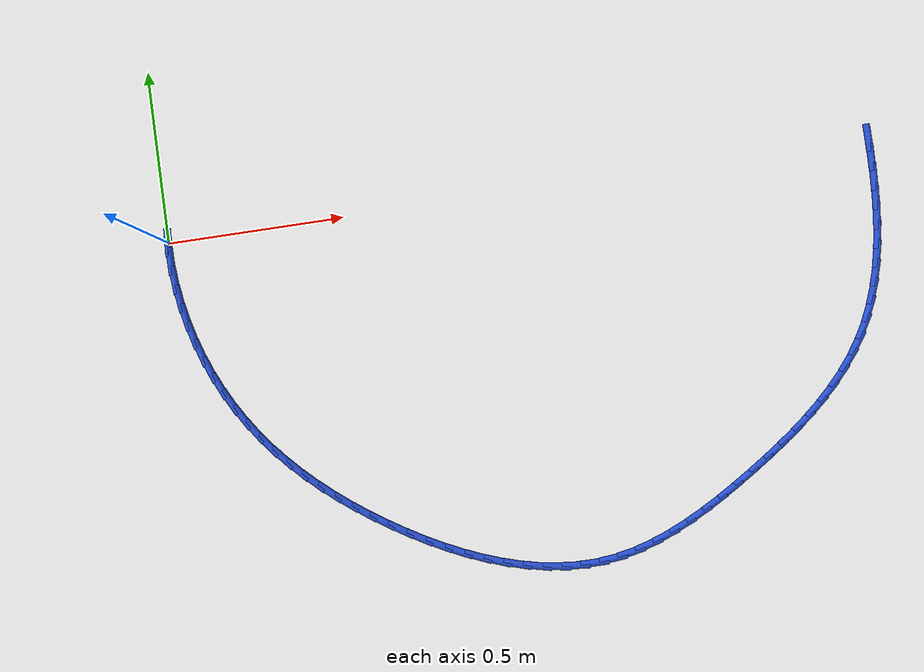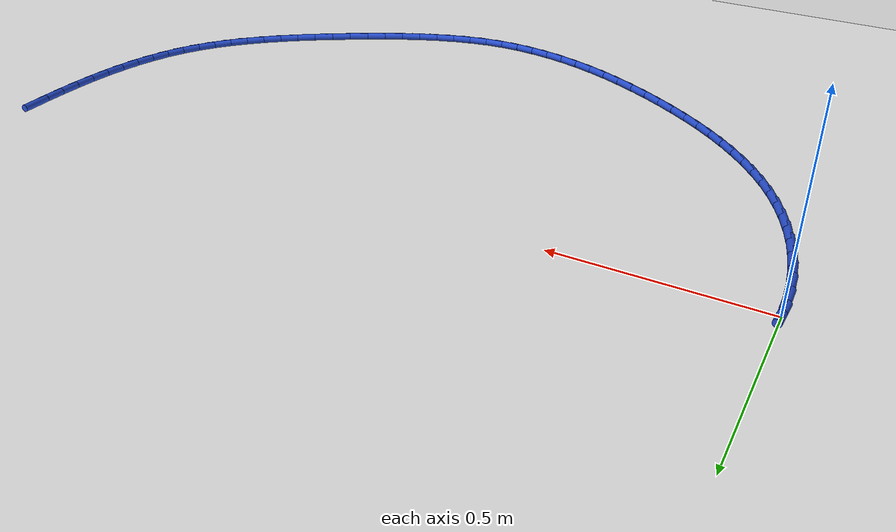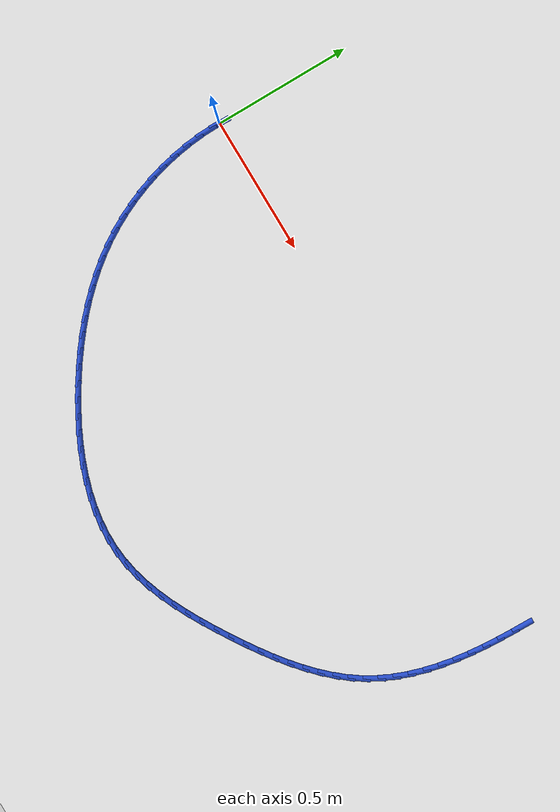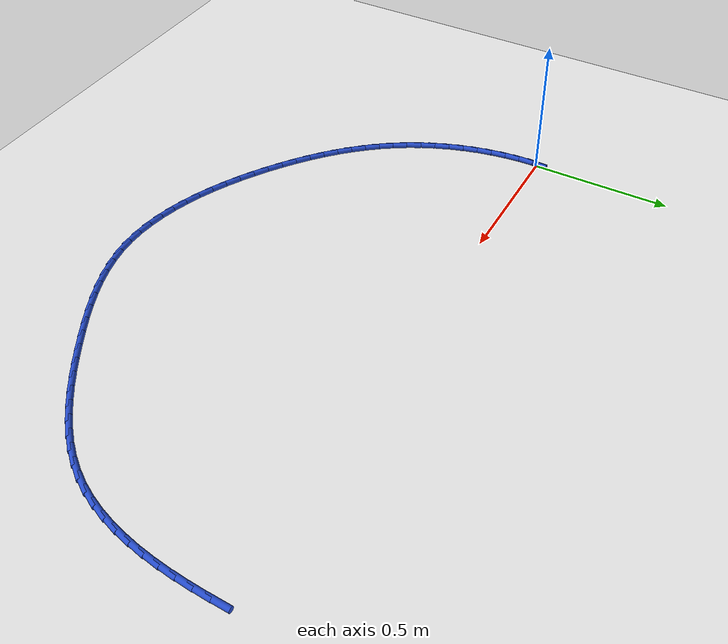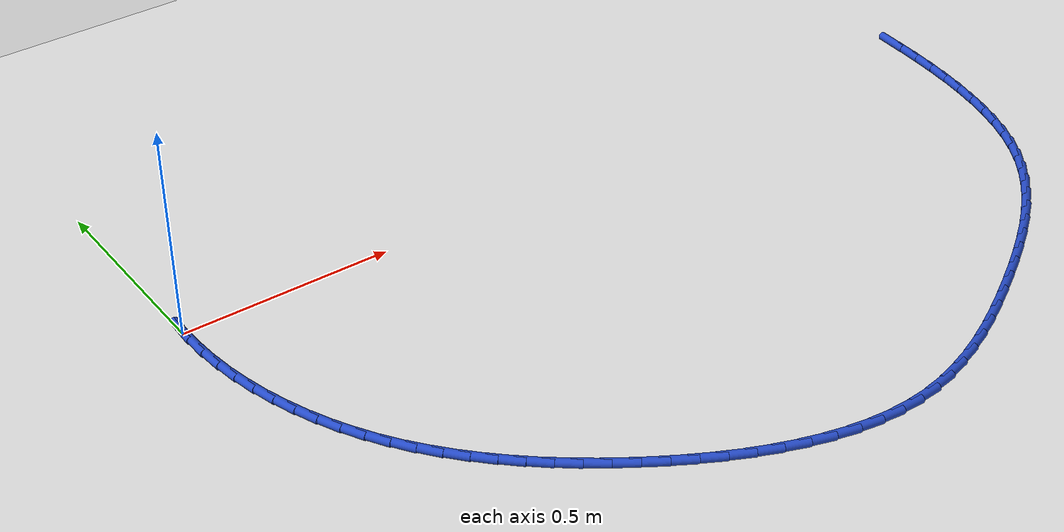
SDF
<sdf version="1.6">
 <world name="default">
  <model name="ground_plane">
   <static>1</static>
   <link name="link">
    <collision name="collision">
     <geometry><plane><normal>0 0 1</normal><size>100 100</size></plane></geometry>
     <surface><friction><ode><mu>100</mu><mu2>50</mu2></ode></friction></surface>
    </collision>
    <visual name="visual">
     <cast_shadows>0</cast_shadows>
     <geometry><plane><normal>0 0 1</normal><size>100 100</size></plane></geometry>
     <material>
      <script><uri>file://media/materials/scripts/gazebo.material</uri><name>Gazebo/WhiteGlow</name></script>
     </material>
    </visual>
   </link>
  </model>
  <model name="line">
   <link name="link_0">
    <pose>-7.28583859910259e-17 -1.3877787807814457e-17 0.01 0 1.57 1.5291417372025922</pose>
    <collision name="collision">
     <geometry><cylinder><radius>0.01</radius><length>0.08</length></cylinder></geometry>
    </collision>
    <visual name="visual">
     <material>
      <script><name>Gazebo/Blue</name><uri>file://media/materials/scripts/gazebo.material</uri></script>
     </material>
     <geometry><cylinder><radius>0.01</radius><length>0.08</length></cylinder></geometry>
    </visual>
   </link>
   <link name="link_61">
    <pose>2.0157058427569576 0.0009565694177509104 0.01 0 1.57 1.5425858403529267</pose>
    <collision name="collision">
     <geometry><cylinder><radius>0.01</radius><length>0.08</length></cylinder></geometry>
    </collision>
    <visual name="visual">
     <material>
      <script><name>Gazebo/Blue</name><uri>file://media/materials/scripts/gazebo.material</uri></script>
     </material>
     <geometry><cylinder><radius>0.01</radius><length>0.08</length></cylinder></geometry>
    </visual>
   </link>
   <link name="link_62">
    <pose>2.0140944439694186 -0.0561488371424163 0.01 0 1.57 1.518823648468559</pose>
    <collision name="collision">
     <geometry><cylinder><radius>0.01</radius><length>0.08</length></cylinder></geometry>
    </collision>
    <visual name="visual">
     <material>
      <script><name>Gazebo/Blue</name><uri>file://media/materials/scripts/gazebo.material</uri></script>
     </material>
     <geometry><cylinder><radius>0.01</radius><length>0.08</length></cylinder></geometry>
    </visual>
   </link>
   <link name="link_63">
    <pose>2.011146064812797 -0.11282715530353107 0.01 0 1.57 1.489719762614309</pose>
    <collision name="collision">
     <geometry><cylinder><radius>0.01</radius><length>0.08</length></cylinder></geometry>
    </collision>
    <visual name="visual">
     <material>
      <script><name>Gazebo/Blue</name><uri>file://media/materials/scripts/gazebo.material</uri></script>
     </material>
     <geometry><cylinder><radius>0.01</radius><length>0.08</length></cylinder></geometry>
    </visual>
   </link>
   <link name="link_64">
    <pose>2.00659082684045 -0.16888839191007618 0.01 0 1.57 1.4549108157230555</pose>
    <collision name="collision">
     <geometry><cylinder><radius>0.01</radius><length>0.08</length></cylinder></geometry>
    </collision>
    <visual name="visual">
     <material>
      <script><name>Gazebo/Blue</name><uri>file://media/materials/scripts/gazebo.material</uri></script>
     </material>
     <geometry><cylinder><radius>0.01</radius><length>0.08</length></cylinder></geometry>
    </visual>
   </link>
   <link name="link_65">
    <pose>2.0001588516057334 -0.22414255380653675 0.01 0 1.57 1.4139843972703303</pose>
    <collision name="collision">
     <geometry><cylinder><radius>0.01</radius><length>0.08</length></cylinder></geometry>
    </collision>
    <visual name="visual">
     <material>
      <script><name>Gazebo/Blue</name><uri>file://media/materials/scripts/gazebo.material</uri></script>
     </material>
     <geometry><cylinder><radius>0.01</radius><length>0.08</length></cylinder></geometry>
    </visual>
   </link>
   <link name="link_66">
    <pose>1.9915802606620037 -0.2783996478373977 0.01 0 1.57 1.3665059052004667</pose>
    <collision name="collision">
     <geometry><cylinder><radius>0.01</radius><length>0.08</length></cylinder></geometry>
    </collision>
    <visual name="visual">
     <material>
      <script><name>Gazebo/Blue</name><uri>file://media/materials/scripts/gazebo.material</uri></script>
     </material>
     <geometry><cylinder><radius>0.01</radius><length>0.08</length></cylinder></geometry>
    </visual>
   </link>
   <link name="link_67">
    <pose>1.980585175562617 -0.33146968084714185 0.01 0 1.57 1.3120611916456293</pose>
    <collision name="collision">
     <geometry><cylinder><radius>0.01</radius><length>0.08</length></cylinder></geometry>
    </collision>
    <visual name="visual">
     <material>
      <script><name>Gazebo/Blue</name><uri>file://media/materials/scripts/gazebo.material</uri></script>
     </material>
     <geometry><cylinder><radius>0.01</radius><length>0.08</length></cylinder></geometry>
    </visual>
   </link>
   <link name="link_68">
    <pose>1.9669037178609305 -0.3831626596802545 0.01 0 1.57 1.2503199363516948</pose>
    <collision name="collision">
     <geometry><cylinder><radius>0.01</radius><length>0.08</length></cylinder></geometry>
    </collision>
    <visual name="visual">
     <material>
      <script><name>Gazebo/Blue</name><uri>file://media/materials/scripts/gazebo.material</uri></script>
     </material>
     <geometry><cylinder><radius>0.01</radius><length>0.08</length></cylinder></geometry>
    </visual>
   </link>
   <link name="link_69">
    <pose>1.9502660091103001 -0.43328859118121976 0.01 0 1.57 1.1811223631322614</pose>
    <collision name="collision">
     <geometry><cylinder><radius>0.01</radius><length>0.08</length></cylinder></geometry>
    </collision>
    <visual name="visual">
     <material>
      <script><name>Gazebo/Blue</name><uri>file://media/materials/scripts/gazebo.material</uri></script>
     </material>
     <geometry><cylinder><radius>0.01</radius><length>0.08</length></cylinder></geometry>
    </visual>
   </link>
   <link name="link_70">
    <pose>1.9304021708640815 -0.4816574821945224 0.01 0 1.57 1.1045856779679706</pose>
    <collision name="collision">
     <geometry><cylinder><radius>0.01</radius><length>0.08</length></cylinder></geometry>
    </collision>
    <visual name="visual">
     <material>
      <script><name>Gazebo/Blue</name><uri>file://media/materials/scripts/gazebo.material</uri></script>
     </material>
     <geometry><cylinder><radius>0.01</radius><length>0.08</length></cylinder></geometry>
    </visual>
   </link>
   <link name="link_71">
    <pose>1.9070423246756327 -0.5280793395646459 0.01 0 1.57 1.0213057545187225</pose>
    <collision name="collision">
     <geometry><cylinder><radius>0.01</radius><length>0.08</length></cylinder></geometry>
    </collision>
    <visual name="visual">
     <material>
      <script><name>Gazebo/Blue</name><uri>file://media/materials/scripts/gazebo.material</uri></script>
     </material>
     <geometry><cylinder><radius>0.01</radius><length>0.08</length></cylinder></geometry>
    </visual>
   </link>
   <link name="link_72">
    <pose>1.8799207354164829 -0.5723663896274764 0.01 0 1.57 0.9374509358287565</pose>
    <collision name="collision">
     <geometry><cylinder><radius>0.01</radius><length>0.08</length></cylinder></geometry>
    </collision>
    <visual name="visual">
     <material>
      <script><name>Gazebo/Blue</name><uri>file://media/materials/scripts/gazebo.material</uri></script>
     </material>
     <geometry><cylinder><radius>0.01</radius><length>0.08</length></cylinder></geometry>
    </visual>
   </link>
   <link name="link_73">
    <pose>1.8490132555443612 -0.6144602722825662 0.01 0 1.57 0.8617910320957431</pose>
    <collision name="collision">
     <geometry><cylinder><radius>0.01</radius><length>0.08</length></cylinder></geometry>
    </collision>
    <visual name="visual">
     <material>
      <script><name>Gazebo/Blue</name><uri>file://media/materials/scripts/gazebo.material</uri></script>
     </material>
     <geometry><cylinder><radius>0.01</radius><length>0.08</length></cylinder></geometry>
    </visual>
   </link>
   <link name="link_74">
    <pose>1.8146662213558487 -0.6545010880980016 0.01 0 1.57 0.7951370696807222</pose>
    <collision name="collision">
     <geometry><cylinder><radius>0.01</radius><length>0.08</length></cylinder></geometry>
    </collision>
    <visual name="visual">
     <material>
      <script><name>Gazebo/Blue</name><uri>file://media/materials/scripts/gazebo.material</uri></script>
     </material>
     <geometry><cylinder><radius>0.01</radius><length>0.08</length></cylinder></geometry>
    </visual>
   </link>
   <link name="link_75">
    <pose>1.7772573784040935 -0.6926457629427386 0.01 0 1.57 0.7372325013766583</pose>
    <collision name="collision">
     <geometry><cylinder><radius>0.01</radius><length>0.08</length></cylinder></geometry>
    </collision>
    <visual name="visual">
     <material>
      <script><name>Gazebo/Blue</name><uri>file://media/materials/scripts/gazebo.material</uri></script>
     </material>
     <geometry><cylinder><radius>0.01</radius><length>0.08</length></cylinder></geometry>
    </visual>
   </link>
   <link name="link_76">
    <pose>1.737164472242243 -0.7290512226857342 0.01 0 1.57 0.6876041704818511</pose>
    <collision name="collision">
     <geometry><cylinder><radius>0.01</radius><length>0.08</length></cylinder></geometry>
    </collision>
    <visual name="visual">
     <material>
      <script><name>Gazebo/Blue</name><uri>file://media/materials/scripts/gazebo.material</uri></script>
     </material>
     <geometry><cylinder><radius>0.01</radius><length>0.08</length></cylinder></geometry>
    </visual>
   </link>
   <link name="link_77">
    <pose>1.6947652484234457 -0.7638743931959453 0.01 0 1.57 0.6456914863020456</pose>
    <collision name="collision">
     <geometry><cylinder><radius>0.01</radius><length>0.08</length></cylinder></geometry>
    </collision>
    <visual name="visual">
     <material>
      <script><name>Gazebo/Blue</name><uri>file://media/materials/scripts/gazebo.material</uri></script>
     </material>
     <geometry><cylinder><radius>0.01</radius><length>0.08</length></cylinder></geometry>
    </visual>
   </link>
   <link name="link_78">
    <pose>1.6504374525008485 -0.7972722003423292 0.01 0 1.57 0.6109356190869805</pose>
    <collision name="collision">
     <geometry><cylinder><radius>0.01</radius><length>0.08</length></cylinder></geometry>
    </collision>
    <visual name="visual">
     <material>
      <script><name>Gazebo/Blue</name><uri>file://media/materials/scripts/gazebo.material</uri></script>
     </material>
     <geometry><cylinder><radius>0.01</radius><length>0.08</length></cylinder></geometry>
    </visual>
   </link>
   <link name="link_79">
    <pose>1.6045588300275992 -0.8294015699938412 0.01 0 1.57 0.5828359159498964</pose>
    <collision name="collision">
     <geometry><cylinder><radius>0.01</radius><length>0.08</length></cylinder></geometry>
    </collision>
    <visual name="visual">
     <material>
      <script><name>Gazebo/Blue</name><uri>file://media/materials/scripts/gazebo.material</uri></script>
     </material>
     <geometry><cylinder><radius>0.01</radius><length>0.08</length></cylinder></geometry>
    </visual>
   </link>
   <link name="link_80">
    <pose>1.557507126556847 -0.8604194280194394 0.01 0 1.57 0.5609769228106578</pose>
    <collision name="collision">
     <geometry><cylinder><radius>0.01</radius><length>0.08</length></cylinder></geometry>
    </collision>
    <visual name="visual">
     <material>
      <script><name>Gazebo/Blue</name><uri>file://media/materials/scripts/gazebo.material</uri></script>
     </material>
     <geometry><cylinder><radius>0.01</radius><length>0.08</length></cylinder></geometry>
    </visual>
   </link>
   <link name="link_81">
    <pose>1.5096599006286824 -0.8904823801318769 0.01 0 1.57 0.5417524112407236</pose>
    <collision name="collision">
     <geometry><cylinder><radius>0.01</radius><length>0.08</length></cylinder></geometry>
    </collision>
    <visual name="visual">
     <material>
      <script><name>Gazebo/Blue</name><uri>file://media/materials/scripts/gazebo.material</uri></script>
     </material>
     <geometry><cylinder><radius>0.01</radius><length>0.08</length></cylinder></geometry>
    </visual>
   </link>
   <link name="link_82">
    <pose>1.4613005027513337 -0.9195857530051663 0.01 0 1.57 0.5162191285974412</pose>
    <collision name="collision">
     <geometry><cylinder><radius>0.01</radius><length>0.08</length></cylinder></geometry>
    </collision>
    <visual name="visual">
     <material>
      <script><name>Gazebo/Blue</name><uri>file://media/materials/scripts/gazebo.material</uri></script>
     </material>
     <geometry><cylinder><radius>0.01</radius><length>0.08</length></cylinder></geometry>
    </visual>
   </link>
   <link name="link_83">
    <pose>1.412465402628207 -0.9473022267714444 0.01 0 1.57 0.48255427603261414</pose>
    <collision name="collision">
     <geometry><cylinder><radius>0.01</radius><length>0.08</length></cylinder></geometry>
    </collision>
    <visual name="visual">
     <material>
      <script><name>Gazebo/Blue</name><uri>file://media/materials/scripts/gazebo.material</uri></script>
     </material>
     <geometry><cylinder><radius>0.01</radius><length>0.08</length></cylinder></geometry>
    </visual>
   </link>
   <link name="link_84">
    <pose>1.3631511216918732 -0.9731360922908082 0.01 0 1.57 0.4401991854289622</pose>
    <collision name="collision">
     <geometry><cylinder><radius>0.01</radius><length>0.08</length></cylinder></geometry>
    </collision>
    <visual name="visual">
     <material>
      <script><name>Gazebo/Blue</name><uri>file://media/materials/scripts/gazebo.material</uri></script>
     </material>
     <geometry><cylinder><radius>0.01</radius><length>0.08</length></cylinder></geometry>
    </visual>
   </link>
   <link name="link_85">
    <pose>1.3133541813749026 -0.996591640423354 0.01 0 1.57 0.3885090226885208</pose>
    <collision name="collision">
     <geometry><cylinder><radius>0.01</radius><length>0.08</length></cylinder></geometry>
    </collision>
    <visual name="visual">
     <material>
      <script><name>Gazebo/Blue</name><uri>file://media/materials/scripts/gazebo.material</uri></script>
     </material>
     <geometry><cylinder><radius>0.01</radius><length>0.08</length></cylinder></geometry>
    </visual>
   </link>
   <link name="link_86">
    <pose>1.263071103109867 -1.0171731620291775 0.01 0 1.57 0.3268390711870931</pose>
    <collision name="collision">
     <geometry><cylinder><radius>0.01</radius><length>0.08</length></cylinder></geometry>
    </collision>
    <visual name="visual">
     <material>
      <script><name>Gazebo/Blue</name><uri>file://media/materials/scripts/gazebo.material</uri></script>
     </material>
     <geometry><cylinder><radius>0.01</radius><length>0.08</length></cylinder></geometry>
    </visual>
   </link>
   <link name="link_87">
    <pose>1.2122984083293373 -1.0343849479683758 0.01 0 1.57 0.2546829485422771</pose>
    <collision name="collision">
     <geometry><cylinder><radius>0.01</radius><length>0.08</length></cylinder></geometry>
    </collision>
    <visual name="visual">
     <material>
      <script><name>Gazebo/Blue</name><uri>file://media/materials/scripts/gazebo.material</uri></script>
     </material>
     <geometry><cylinder><radius>0.01</radius><length>0.08</length></cylinder></geometry>
    </visual>
   </link>
   <link name="link_88">
    <pose>1.161032618465885 -1.047731289101045 0.01 0 1.57 0.17187270879410657</pose>
    <collision name="collision">
     <geometry><cylinder><radius>0.01</radius><length>0.08</length></cylinder></geometry>
    </collision>
    <visual name="visual">
     <material>
      <script><name>Gazebo/Blue</name><uri>file://media/materials/scripts/gazebo.material</uri></script>
     </material>
     <geometry><cylinder><radius>0.01</radius><length>0.08</length></cylinder></geometry>
    </visual>
   </link>
   <link name="link_89">
    <pose>1.1092702549520794 -1.0567164762872816 0.01 0 1.57 0.0795533670721077</pose>
    <collision name="collision">
     <geometry><cylinder><radius>0.01</radius><length>0.08</length></cylinder></geometry>
    </collision>
    <visual name="visual">
     <material>
      <script><name>Gazebo/Blue</name><uri>file://media/materials/scripts/gazebo.material</uri></script>
     </material>
     <geometry><cylinder><radius>0.01</radius><length>0.08</length></cylinder></geometry>
    </visual>
   </link>
   <link name="link_90">
    <pose>1.0570155736777456 -1.0608823039823354 0.01 0 1.57 -0.012262764881753574</pose>
    <collision name="collision">
     <geometry><cylinder><radius>0.01</radius><length>0.08</length></cylinder></geometry>
    </collision>
    <visual name="visual">
     <material>
      <script><name>Gazebo/Blue</name><uri>file://media/materials/scripts/gazebo.material</uri></script>
     </material>
     <geometry><cylinder><radius>0.01</radius><length>0.08</length></cylinder></geometry>
    </visual>
   </link>
   <link name="link_91">
    <pose>1.0043689579202142 -1.0602366785490949 0.01 0 1.57 -0.09678764433060358</pose>
    <collision name="collision">
     <geometry><cylinder><radius>0.01</radius><length>0.08</length></cylinder></geometry>
    </collision>
    <visual name="visual">
     <material>
      <script><name>Gazebo/Blue</name><uri>file://media/materials/scripts/gazebo.material</uri></script>
     </material>
     <geometry><cylinder><radius>0.01</radius><length>0.08</length></cylinder></geometry>
    </visual>
   </link>
   <link name="link_92">
    <pose>0.9514958929273675 -1.055103179172432 0.01 0 1.57 -0.1737694838003183</pose>
    <collision name="collision">
     <geometry><cylinder><radius>0.01</radius><length>0.08</length></cylinder></geometry>
    </collision>
    <visual name="visual">
     <material>
      <script><name>Gazebo/Blue</name><uri>file://media/materials/scripts/gazebo.material</uri></script>
     </material>
     <geometry><cylinder><radius>0.01</radius><length>0.08</length></cylinder></geometry>
    </visual>
   </link>
   <link name="link_93">
    <pose>0.8985630963618865 -1.0458113608910105 0.01 0 1.57 -0.24344815887389462</pose>
    <collision name="collision">
     <geometry><cylinder><radius>0.01</radius><length>0.08</length></cylinder></geometry>
    </collision>
    <visual name="visual">
     <material>
      <script><name>Gazebo/Blue</name><uri>file://media/materials/scripts/gazebo.material</uri></script>
     </material>
     <geometry><cylinder><radius>0.01</radius><length>0.08</length></cylinder></geometry>
    </visual>
   </link>
   <link name="link_94">
    <pose>0.8457372858864554 -1.0326907787434954 0.01 0 1.57 -0.3063008204653647</pose>
    <collision name="collision">
     <geometry><cylinder><radius>0.01</radius><length>0.08</length></cylinder></geometry>
    </collision>
    <visual name="visual">
     <material>
      <script><name>Gazebo/Blue</name><uri>file://media/materials/scripts/gazebo.material</uri></script>
     </material>
     <geometry><cylinder><radius>0.01</radius><length>0.08</length></cylinder></geometry>
    </visual>
   </link>
   <link name="link_95">
    <pose>0.7931851791637546 -1.0160709877685499 0.01 0 1.57 -0.36292907789914386</pose>
    <collision name="collision">
     <geometry><cylinder><radius>0.01</radius><length>0.08</length></cylinder></geometry>
    </collision>
    <visual name="visual">
     <material>
      <script><name>Gazebo/Blue</name><uri>file://media/materials/scripts/gazebo.material</uri></script>
     </material>
     <geometry><cylinder><radius>0.01</radius><length>0.08</length></cylinder></geometry>
    </visual>
   </link>
   <link name="link_96">
    <pose>0.7410734938564658 -0.9962815430048378 0.01 0 1.57 -0.41397879114958797</pose>
    <collision name="collision">
     <geometry><cylinder><radius>0.01</radius><length>0.08</length></cylinder></geometry>
    </collision>
    <visual name="visual">
     <material>
      <script><name>Gazebo/Blue</name><uri>file://media/materials/scripts/gazebo.material</uri></script>
     </material>
     <geometry><cylinder><radius>0.01</radius><length>0.08</length></cylinder></geometry>
    </visual>
   </link>
   <link name="link_97">
    <pose>0.6895689476272719 -0.973651999491024 0.01 0 1.57 -0.4600890946344305</pose>
    <collision name="collision">
     <geometry><cylinder><radius>0.01</radius><length>0.08</length></cylinder></geometry>
    </collision>
    <visual name="visual">
     <material>
      <script><name>Gazebo/Blue</name><uri>file://media/materials/scripts/gazebo.material</uri></script>
     </material>
     <geometry><cylinder><radius>0.01</radius><length>0.08</length></cylinder></geometry>
    </visual>
   </link>
   <link name="link_98">
    <pose>0.6388382581388549 -0.9485119122657723 0.01 0 1.57 -0.5018637199678293</pose>
    <collision name="collision">
     <geometry><cylinder><radius>0.01</radius><length>0.08</length></cylinder></geometry>
    </collision>
    <visual name="visual">
     <material>
      <script><name>Gazebo/Blue</name><uri>file://media/materials/scripts/gazebo.material</uri></script>
     </material>
     <geometry><cylinder><radius>0.01</radius><length>0.08</length></cylinder></geometry>
    </visual>
   </link>
   <link name="link_99">
    <pose>0.5890481430538959 -0.921190836367746 0.01 0 1.57 -0.5398576882475953</pose>
    <collision name="collision">
     <geometry><cylinder><radius>0.01</radius><length>0.08</length></cylinder></geometry>
    </collision>
    <visual name="visual">
     <material>
      <script><name>Gazebo/Blue</name><uri>file://media/materials/scripts/gazebo.material</uri></script>
     </material>
     <geometry><cylinder><radius>0.01</radius><length>0.08</length></cylinder></geometry>
    </visual>
   </link>
   <link name="link_100">
    <pose>0.5403653200350764 -0.8920183268356091 0.01 0 1.57 -0.5745770276501383</pose>
    <collision name="collision">
     <geometry><cylinder><radius>0.01</radius><length>0.08</length></cylinder></geometry>
    </collision>
    <visual name="visual">
     <material>
      <script><name>Gazebo/Blue</name><uri>file://media/materials/scripts/gazebo.material</uri></script>
     </material>
     <geometry><cylinder><radius>0.01</radius><length>0.08</length></cylinder></geometry>
    </visual>
   </link>
   <link name="link_101">
    <pose>0.492956483712079 -0.8613237102389146 0.01 0 1.57 -0.6078566789833715</pose>
    <collision name="collision">
     <geometry><cylinder><radius>0.01</radius><length>0.08</length></cylinder></geometry>
    </collision>
    <visual name="visual">
     <material>
      <script><name>Gazebo/Blue</name><uri>file://media/materials/scripts/gazebo.material</uri></script>
     </material>
     <geometry><cylinder><radius>0.01</radius><length>0.08</length></cylinder></geometry>
    </visual>
   </link>
   <link name="link_102">
    <pose>0.4469781177981817 -0.8293350289513032 0.01 0 1.57 -0.6435233482062773</pose>
    <collision name="collision">
     <geometry><cylinder><radius>0.01</radius><length>0.08</length></cylinder></geometry>
    </collision>
    <visual name="visual">
     <material>
      <script><name>Gazebo/Blue</name><uri>file://media/materials/scripts/gazebo.material</uri></script>
     </material>
     <geometry><cylinder><radius>0.01</radius><length>0.08</length></cylinder></geometry>
    </visual>
   </link>
   <link name="link_103">
    <pose>0.40256048795639315 -0.7960202630723194 0.01 0 1.57 -0.6822499221324951</pose>
    <collision name="collision">
     <geometry><cylinder><radius>0.01</radius><length>0.08</length></cylinder></geometry>
    </collision>
    <visual name="visual">
     <material>
      <script><name>Gazebo/Blue</name><uri>file://media/materials/scripts/gazebo.material</uri></script>
     </material>
     <geometry><cylinder><radius>0.01</radius><length>0.08</length></cylinder></geometry>
    </visual>
   </link>
   <link name="link_104">
    <pose>0.3598297103465583 -0.7613062329196831 0.01 0 1.57 -0.7241122031464207</pose>
    <collision name="collision">
     <geometry><cylinder><radius>0.01</radius><length>0.08</length></cylinder></geometry>
    </collision>
    <visual name="visual">
     <material>
      <script><name>Gazebo/Blue</name><uri>file://media/materials/scripts/gazebo.material</uri></script>
     </material>
     <geometry><cylinder><radius>0.01</radius><length>0.08</length></cylinder></geometry>
    </visual>
   </link>
   <link name="link_105">
    <pose>0.3189119011285238 -0.7251197588111168 0.01 0 1.57 -0.769148602315242</pose>
    <collision name="collision">
     <geometry><cylinder><radius>0.01</radius><length>0.08</length></cylinder></geometry>
    </collision>
    <visual name="visual">
     <material>
      <script><name>Gazebo/Blue</name><uri>file://media/materials/scripts/gazebo.material</uri></script>
     </material>
     <geometry><cylinder><radius>0.01</radius><length>0.08</length></cylinder></geometry>
    </visual>
   </link>
   <link name="link_106">
    <pose>0.2799331764621346 -0.6873876610643409 0.01 0 1.57 -0.8173468441027122</pose>
    <collision name="collision">
     <geometry><cylinder><radius>0.01</radius><length>0.08</length></cylinder></geometry>
    </collision>
    <visual name="visual">
     <material>
      <script><name>Gazebo/Blue</name><uri>file://media/materials/scripts/gazebo.material</uri></script>
     </material>
     <geometry><cylinder><radius>0.01</radius><length>0.08</length></cylinder></geometry>
    </visual>
   </link>
   <link name="link_107">
    <pose>0.24301965250723612 -0.6480367599970764 0.01 0 1.57 -0.8686300916520301</pose>
    <collision name="collision">
     <geometry><cylinder><radius>0.01</radius><length>0.08</length></cylinder></geometry>
    </collision>
    <visual name="visual">
     <material>
      <script><name>Gazebo/Blue</name><uri>file://media/materials/scripts/gazebo.material</uri></script>
     </material>
     <geometry><cylinder><radius>0.01</radius><length>0.08</length></cylinder></geometry>
    </visual>
   </link>
   <link name="link_108">
    <pose>0.20829744542367346 -0.6069938759270445 0.01 0 1.57 -0.9228438729069645</pose>
    <collision name="collision">
     <geometry><cylinder><radius>0.01</radius><length>0.08</length></cylinder></geometry>
    </collision>
    <visual name="visual">
     <material>
      <script><name>Gazebo/Blue</name><uri>file://media/materials/scripts/gazebo.material</uri></script>
     </material>
     <geometry><cylinder><radius>0.01</radius><length>0.08</length></cylinder></geometry>
    </visual>
   </link>
   <link name="link_109">
    <pose>0.1758926713712928 -0.5641858291719659 0.01 0 1.57 -0.9797457010641522</pose>
    <collision name="collision">
     <geometry><cylinder><radius>0.01</radius><length>0.08</length></cylinder></geometry>
    </collision>
    <visual name="visual">
     <material>
      <script><name>Gazebo/Blue</name><uri>file://media/materials/scripts/gazebo.material</uri></script>
     </material>
     <geometry><cylinder><radius>0.01</radius><length>0.08</length></cylinder></geometry>
    </visual>
   </link>
   <link name="link_110">
    <pose>0.14593144650993947 -0.5195394400495625 0.01 0 1.57 -1.0388805176268385</pose>
    <collision name="collision">
     <geometry><cylinder><radius>0.01</radius><length>0.08</length></cylinder></geometry>
    </collision>
    <visual name="visual">
     <material>
      <script><name>Gazebo/Blue</name><uri>file://media/materials/scripts/gazebo.material</uri></script>
     </material>
     <geometry><cylinder><radius>0.01</radius><length>0.08</length></cylinder></geometry>
    </visual>
   </link>
   <link name="link_111">
    <pose>0.11853805296339533 -0.4729910964383375 0.01 0 1.57 -1.0980292609954454</pose>
    <collision name="collision">
     <geometry><cylinder><radius>0.01</radius><length>0.08</length></cylinder></geometry>
    </collision>
    <visual name="visual">
     <material>
      <script><name>Gazebo/Blue</name><uri>file://media/materials/scripts/gazebo.material</uri></script>
     </material>
     <geometry><cylinder><radius>0.01</radius><length>0.08</length></cylinder></geometry>
    </visual>
   </link>
   <link name="link_112">
    <pose>0.09380644378855924 -0.4246354029480209 0.01 0 1.57 -1.1558219660232116</pose>
    <collision name="collision">
     <geometry><cylinder><radius>0.01</radius><length>0.08</length></cylinder></geometry>
    </collision>
    <visual name="visual">
     <material>
      <script><name>Gazebo/Blue</name><uri>file://media/materials/scripts/gazebo.material</uri></script>
     </material>
     <geometry><cylinder><radius>0.01</radius><length>0.08</length></cylinder></geometry>
    </visual>
   </link>
   <link name="link_113">
    <pose>0.07180565430844248 -0.3746969517814516 0.01 0 1.57 -1.2125917570878004</pose>
    <collision name="collision">
     <geometry><cylinder><radius>0.01</radius><length>0.08</length></cylinder></geometry>
    </collision>
    <visual name="visual">
     <material>
      <script><name>Gazebo/Blue</name><uri>file://media/materials/scripts/gazebo.material</uri></script>
     </material>
     <geometry><cylinder><radius>0.01</radius><length>0.08</length></cylinder></geometry>
    </visual>
   </link>
   <link name="link_114">
    <pose>0.05260398119685716 -0.3234041884305294 0.01 0 1.57 -1.26872090402041</pose>
    <collision name="collision">
     <geometry><cylinder><radius>0.01</radius><length>0.08</length></cylinder></geometry>
    </collision>
    <visual name="visual">
     <material>
      <script><name>Gazebo/Blue</name><uri>file://media/materials/scripts/gazebo.material</uri></script>
     </material>
     <geometry><cylinder><radius>0.01</radius><length>0.08</length></cylinder></geometry>
    </visual>
   </link>
   <link name="link_115">
    <pose>0.03626972112761548 -0.27098555838715405 0.01 0 1.57 -1.3245905100124282</pose>
    <collision name="collision">
     <geometry><cylinder><radius>0.01</radius><length>0.08</length></cylinder></geometry>
    </collision>
    <visual name="visual">
     <material>
      <script><name>Gazebo/Blue</name><uri>file://media/materials/scripts/gazebo.material</uri></script>
     </material>
     <geometry><cylinder><radius>0.01</radius><length>0.08</length></cylinder></geometry>
    </visual>
   </link>
   <link name="link_116">
    <pose>0.02287117077453028 -0.217669507143227 0.01 0 1.57 -1.380579258946693</pose>
    <collision name="collision">
     <geometry><cylinder><radius>0.01</radius><length>0.08</length></cylinder></geometry>
    </collision>
    <visual name="visual">
     <material>
      <script><name>Gazebo/Blue</name><uri>file://media/materials/scripts/gazebo.material</uri></script>
     </material>
     <geometry><cylinder><radius>0.01</radius><length>0.08</length></cylinder></geometry>
    </visual>
   </link>
   <link name="link_117">
    <pose>0.012476626811413722 -0.16368448019064782 0.01 0 1.57 -1.437062525208199</pose>
    <collision name="collision">
     <geometry><cylinder><radius>0.01</radius><length>0.08</length></cylinder></geometry>
    </collision>
    <visual name="visual">
     <material>
      <script><name>Gazebo/Blue</name><uri>file://media/materials/scripts/gazebo.material</uri></script>
     </material>
     <geometry><cylinder><radius>0.01</radius><length>0.08</length></cylinder></geometry>
    </visual>
   </link>
   <link name="link_118">
    <pose>0.005154385912078195 -0.10925892302131684 0.01 0 1.57 -1.4944111647041305</pose>
    <collision name="collision">
     <geometry><cylinder><radius>0.01</radius><length>0.08</length></cylinder></geometry>
    </collision>
    <visual name="visual">
     <material>
      <script><name>Gazebo/Blue</name><uri>file://media/materials/scripts/gazebo.material</uri></script>
     </material>
     <geometry><cylinder><radius>0.01</radius><length>0.08</length></cylinder></geometry>
    </visual>
   </link>
   <link name="link_119">
    <pose>0.0009727447503360825 -0.05462128112713367 0.01 0 1.57 -1.5529893125269614</pose>
    <collision name="collision">
     <geometry><cylinder><radius>0.01</radius><length>0.08</length></cylinder></geometry>
    </collision>
    <visual name="visual">
     <material>
      <script><name>Gazebo/Blue</name><uri>file://media/materials/scripts/gazebo.material</uri></script>
     </material>
     <geometry><cylinder><radius>0.01</radius><length>0.08</length></cylinder></geometry>
    </visual>
   </link>
   <link name="link_120">
    <pose>-9.71445146547012e-17 4.163336342344337e-17 0.01 0 1.57 1.528442161481444</pose>
    <collision name="collision">
     <geometry><cylinder><radius>0.01</radius><length>0.08</length></cylinder></geometry>
    </collision>
    <visual name="visual">
     <material>
      <script><name>Gazebo/Blue</name><uri>file://media/materials/scripts/gazebo.material</uri></script>
     </material>
     <geometry><cylinder><radius>0.01</radius><length>0.08</length></cylinder></geometry>
    </visual>
   </link>
  </model>
 </world>
</sdf>
